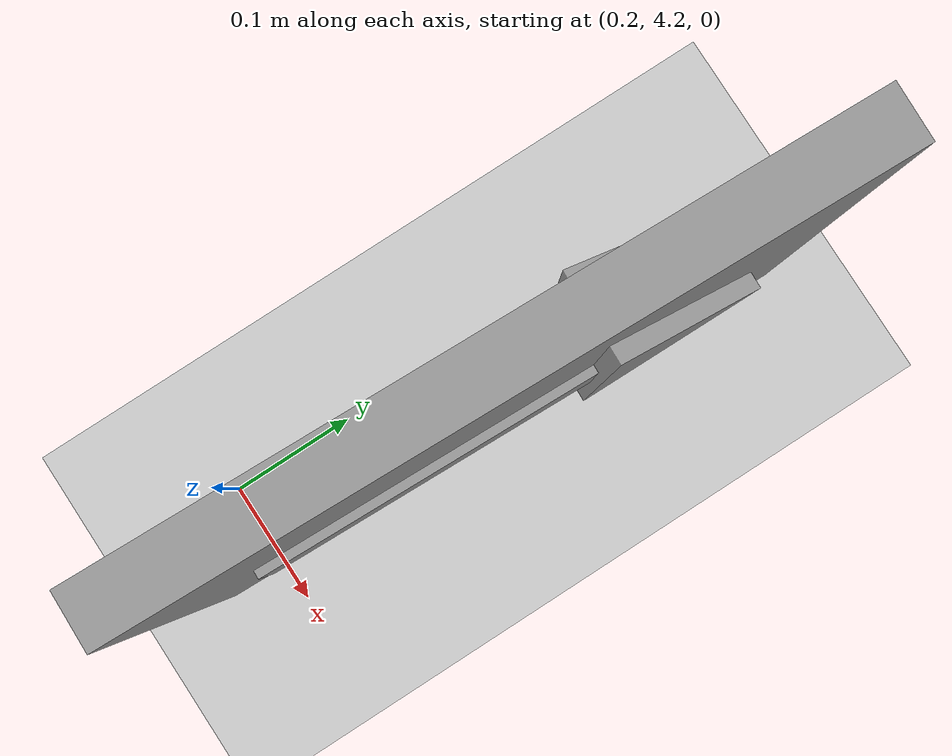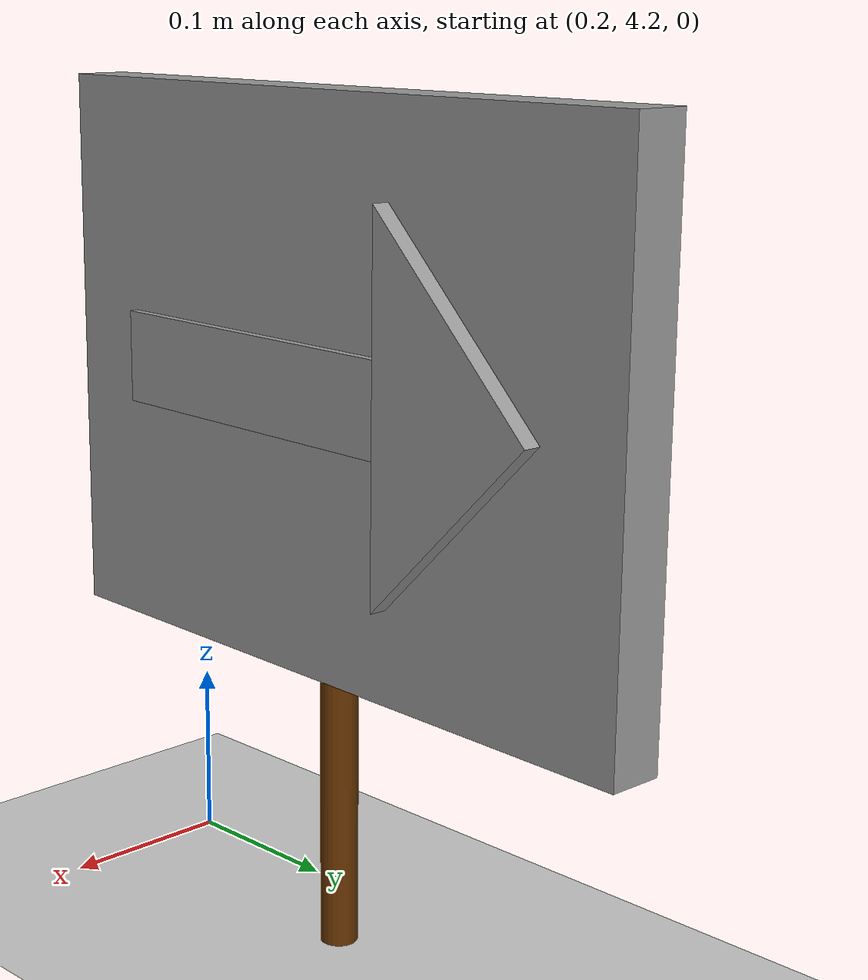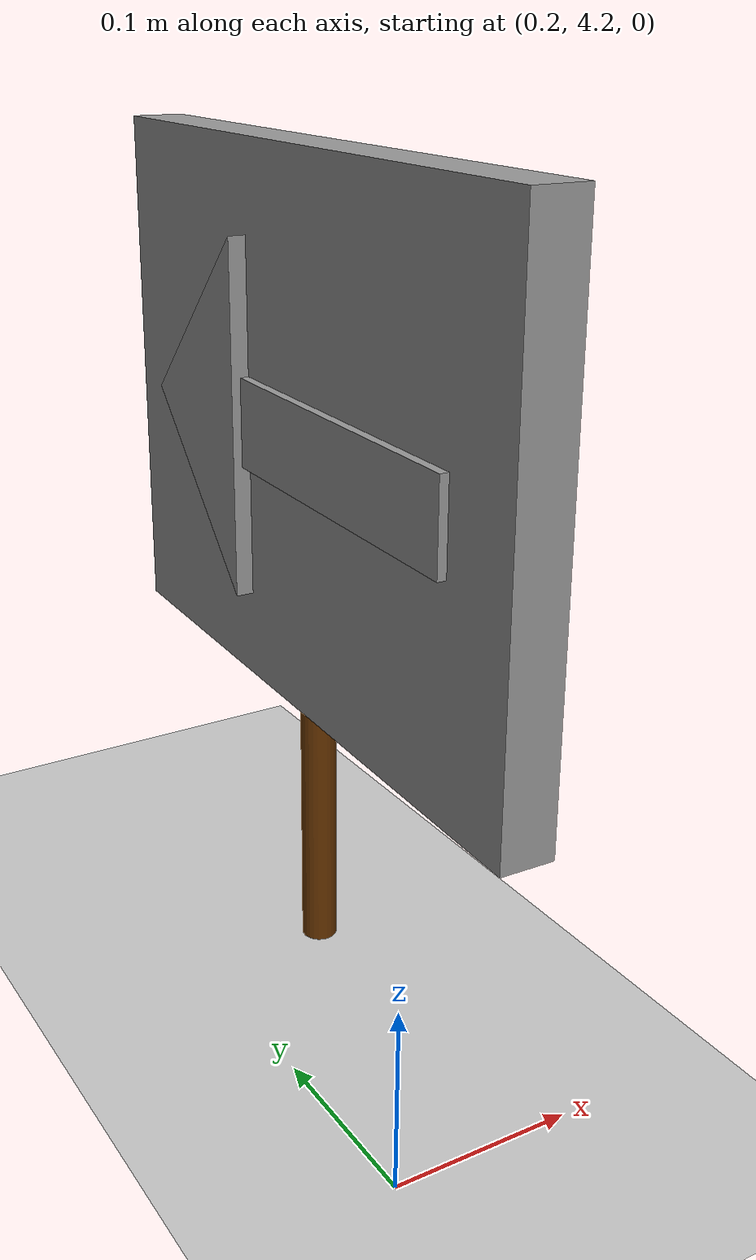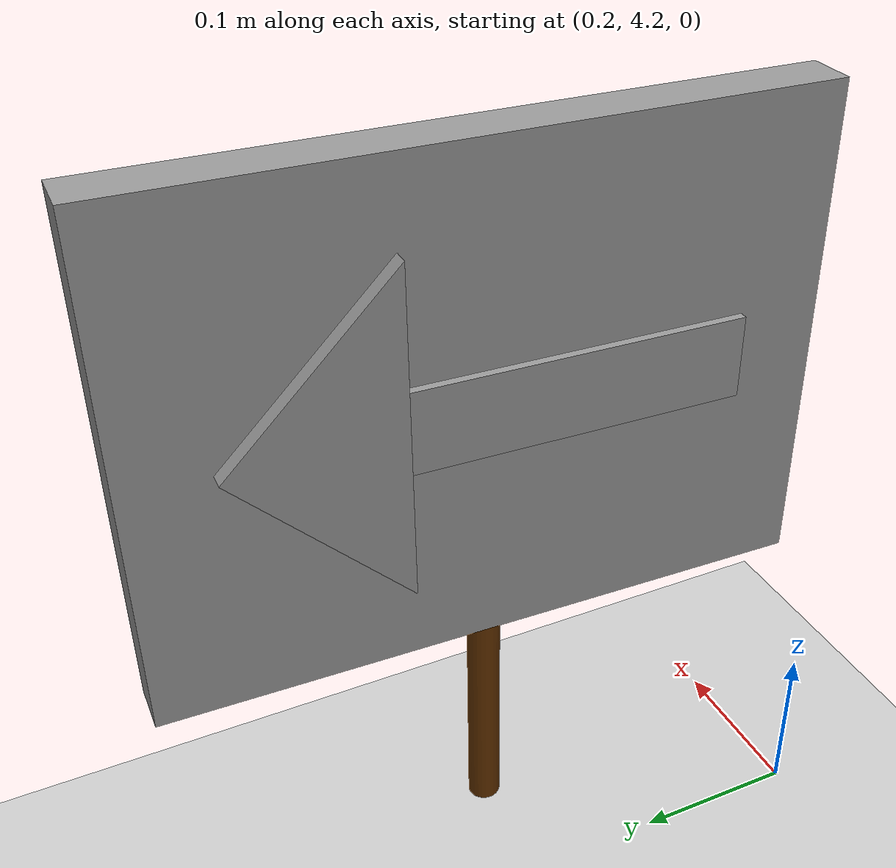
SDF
<sdf version="1.7">
 <world name="default">
  <model name="ground_plane">
   <static>1</static>
   <link name="link">
    <collision name="collision">
     <geometry><plane><normal>0 0 1</normal><size>100 100</size></plane></geometry>
     <surface>
      <contact><collide_bitmask>65535</collide_bitmask></contact>
      <friction><ode><mu>100</mu><mu2>50</mu2></ode></friction>
     </surface>
    </collision>
    <visual name="visual">
     <cast_shadows>0</cast_shadows>
     <geometry><plane><normal>0 0 1</normal><size>100 100</size></plane></geometry>
     <material>
      <script><uri>file://media/materials/scripts/gazebo.material</uri><name>Gazebo/Grey</name></script>
     </material>
    </visual>
   </link>
  </model>
  <model name="arrow_board_3">
   <link name="link_0">
    <inertial>
     <mass>1</mass>
     <inertia><ixx>0.145833</ixx><ixy>0</ixy><ixz>0</ixz><iyy>0.145833</iyy><iyz>0</iyz><izz>0.125</izz></inertia>
    </inertial>
    <pose>-0.01675 0.00625 0.1625 0 -0 0</pose>
    <gravity>0</gravity>
    <visual name="visual">
     <geometry><cylinder><radius>0.01</radius><length>0.3</length></cylinder></geometry>
     <material>
      <lighting>1</lighting>
      <script><uri>file://media/materials/scripts/gazebo.material</uri><name>Gazebo/Grey</name></script>
      <shader type="pixel"><normal_map>__default__</normal_map></shader>
      <ambient>0.4 0.2 0 1</ambient>
      <diffuse>0.4 0.2 0 1</diffuse>
      <specular>0 0 0 1</specular>
      <emissive>0 0 0 1</emissive>
     </material>
    </visual>
    <collision name="collision">
     <geometry><cylinder><radius>0.01</radius><length>0.3</length></cylinder></geometry>
     <surface>
      <friction>
       <ode><mu>1</mu><mu2>1</mu2><fdir1>0 0 0</fdir1><slip1>0</slip1><slip2>0</slip2></ode>
       <torsional>
        <coefficient>1</coefficient>
        <patch_radius>0</patch_radius>
        <surface_radius>0</surface_radius>
        <use_patch_radius>1</use_patch_radius>
        <ode><slip>0</slip></ode>
       </torsional>
      </friction>
      <bounce><restitution_coefficient>0</restitution_coefficient><threshold>1e+06</threshold></bounce>
      <contact>
       <collide_without_contact>0</collide_without_contact>
       <collide_without_contact_bitmask>1</collide_without_contact_bitmask>
       <collide_bitmask>1</collide_bitmask>
       <ode>
        <soft_cfm>0</soft_cfm>
        <soft_erp>0.2</soft_erp>
        <kp>1e+13</kp>
        <kd>1</kd>
        <max_vel>0.01</max_vel>
        <min_depth>0</min_depth>
       </ode>
       <bullet>
        <split_impulse>1</split_impulse>
        <split_impulse_penetration_threshold>-0.01</split_impulse_penetration_threshold>
        <soft_cfm>0</soft_cfm>
        <soft_erp>0.2</soft_erp>
        <kp>1e+13</kp>
        <kd>1</kd>
       </bullet>
      </contact>
     </surface>
    </collision>
   </link>
   <link name="link_1">
    <inertial>
     <mass>1</mass>
     <inertia>
      <ixx>0.166667</ixx>
      <ixy>0</ixy>
      <ixz>0</ixz>
      <iyy>0.166667</iyy>
      <iyz>0</iyz>
      <izz>0.166667</izz>
     </inertia>
    </inertial>
    <pose>-0.01675 0.00625 0.3125 0 -0 0</pose>
    <gravity>0</gravity>
    <visual name="visual">
     <geometry><box><size>0.4 0.03 0.3</size></box></geometry>
     <material>
      <lighting>1</lighting>
      <script><uri>file://media/materials/scripts/gazebo.material</uri><name>Gazebo/Grey</name></script>
      <shader type="pixel"><normal_map>__default__</normal_map></shader>
      <ambient>1 1 1 1</ambient>
      <diffuse>1 1 1 1</diffuse>
      <specular>1 1 1 1</specular>
      <emissive>0 0 0 1</emissive>
     </material>
    </visual>
    <collision name="collision">
     <geometry><box><size>0.4 0.03 0.3</size></box></geometry>
     <surface>
      <friction>
       <ode><mu>1</mu><mu2>1</mu2><fdir1>0 0 0</fdir1><slip1>0</slip1><slip2>0</slip2></ode>
       <torsional>
        <coefficient>1</coefficient>
        <patch_radius>0</patch_radius>
        <surface_radius>0</surface_radius>
        <use_patch_radius>1</use_patch_radius>
        <ode><slip>0</slip></ode>
       </torsional>
      </friction>
      <bounce><restitution_coefficient>0</restitution_coefficient><threshold>1e+06</threshold></bounce>
      <contact>
       <collide_without_contact>0</collide_without_contact>
       <collide_without_contact_bitmask>1</collide_without_contact_bitmask>
       <collide_bitmask>1</collide_bitmask>
       <ode>
        <soft_cfm>0</soft_cfm>
        <soft_erp>0.2</soft_erp>
        <kp>1e+13</kp>
        <kd>1</kd>
        <max_vel>0.01</max_vel>
        <min_depth>0</min_depth>
       </ode>
       <bullet>
        <split_impulse>1</split_impulse>
        <split_impulse_penetration_threshold>-0.01</split_impulse_penetration_threshold>
        <soft_cfm>0</soft_cfm>
        <soft_erp>0.2</soft_erp>
        <kp>1e+13</kp>
        <kd>1</kd>
       </bullet>
      </contact>
     </surface>
    </collision>
   </link>
   <link name="link_2">
    <inertial>
     <mass>1</mass>
     <inertia>
      <ixx>0.166667</ixx>
      <ixy>0</ixy>
      <ixz>0</ixz>
      <iyy>0.166667</iyy>
      <iyz>0</iyz>
      <izz>0.166667</izz>
     </inertia>
    </inertial>
    <pose>-0.06675 0.00625 0.3125 0 -0 0</pose>
    <gravity>0</gravity>
    <visual name="visual">
     <geometry><box><size>0.2 0.04 0.05</size></box></geometry>
     <material>
      <lighting>1</lighting>
      <script><uri>file://media/materials/scripts/gazebo.material</uri><name>Gazebo/Grey</name></script>
      <shader type="pixel"><normal_map>__default__</normal_map></shader>
      <ambient>0 0 0 1</ambient>
      <diffuse>0 0 0 1</diffuse>
      <specular>0 0 0 1</specular>
      <emissive>0 0 0 1</emissive>
     </material>
    </visual>
    <collision name="collision">
     <geometry><box><size>0.2 0.04 0.05</size></box></geometry>
     <surface>
      <friction>
       <ode><mu>1</mu><mu2>1</mu2><fdir1>0 0 0</fdir1><slip1>0</slip1><slip2>0</slip2></ode>
       <torsional>
        <coefficient>1</coefficient>
        <patch_radius>0</patch_radius>
        <surface_radius>0</surface_radius>
        <use_patch_radius>1</use_patch_radius>
        <ode><slip>0</slip></ode>
       </torsional>
      </friction>
      <bounce><restitution_coefficient>0</restitution_coefficient><threshold>1e+06</threshold></bounce>
      <contact>
       <collide_without_contact>0</collide_without_contact>
       <collide_without_contact_bitmask>1</collide_without_contact_bitmask>
       <collide_bitmask>1</collide_bitmask>
       <ode>
        <soft_cfm>0</soft_cfm>
        <soft_erp>0.2</soft_erp>
        <kp>1e+13</kp>
        <kd>1</kd>
        <max_vel>0.01</max_vel>
        <min_depth>0</min_depth>
       </ode>
       <bullet>
        <split_impulse>1</split_impulse>
        <split_impulse_penetration_threshold>-0.01</split_impulse_penetration_threshold>
        <soft_cfm>0</soft_cfm>
        <soft_erp>0.2</soft_erp>
        <kp>1e+13</kp>
        <kd>1</kd>
       </bullet>
      </contact>
     </surface>
    </collision>
   </link>
   <link name="link_4">
    <inertial>
     <mass>1</mass>
     <inertia>
      <ixx>0.166667</ixx>
      <ixy>0</ixy>
      <ixz>0</ixz>
      <iyy>0.166667</iyy>
      <iyz>0</iyz>
      <izz>0.166667</izz>
     </inertia>
    </inertial>
    <pose>0.033583 -0.01875 0.2125 0 -0 0</pose>
    <gravity>0</gravity>
    <visual name="visual">
     <geometry>
      <mesh>
       <uri>/home/ritesh/mobrob_ws/src/mobrob/meshes/arrow_head.stl</uri>
       <scale>0.001 0.001 0.001</scale>
      </mesh>
     </geometry>
     <material>
      <lighting>1</lighting>
      <script><uri>file://media/materials/scripts/gazebo.material</uri><name>Gazebo/Grey</name></script>
      <shader type="pixel"><normal_map>__default__</normal_map></shader>
      <ambient>0 0 0 1</ambient>
      <diffuse>0 0 0 1</diffuse>
      <specular>0 0 0 1</specular>
      <emissive>0 0 0 1</emissive>
     </material>
    </visual>
    <collision name="collision">
     <geometry>
      <mesh>
       <uri>/home/ritesh/mobrob_ws/src/mobrob/meshes/arrow_head.stl</uri>
       <scale>0.001 0.001 0.001</scale>
      </mesh>
     </geometry>
     <surface>
      <friction>
       <ode><mu>1</mu><mu2>1</mu2><fdir1>0 0 0</fdir1><slip1>0</slip1><slip2>0</slip2></ode>
       <torsional>
        <coefficient>1</coefficient>
        <patch_radius>0</patch_radius>
        <surface_radius>0</surface_radius>
        <use_patch_radius>1</use_patch_radius>
        <ode><slip>0</slip></ode>
       </torsional>
      </friction>
      <bounce><restitution_coefficient>0</restitution_coefficient><threshold>1e+06</threshold></bounce>
      <contact>
       <collide_without_contact>0</collide_without_contact>
       <collide_without_contact_bitmask>1</collide_without_contact_bitmask>
       <collide_bitmask>1</collide_bitmask>
       <ode>
        <soft_cfm>0</soft_cfm>
        <soft_erp>0.2</soft_erp>
        <kp>1e+13</kp>
        <kd>1</kd>
        <max_vel>0.01</max_vel>
        <min_depth>0</min_depth>
       </ode>
       <bullet>
        <split_impulse>1</split_impulse>
        <split_impulse_penetration_threshold>-0.01</split_impulse_penetration_threshold>
        <soft_cfm>0</soft_cfm>
        <soft_erp>0.2</soft_erp>
        <kp>1e+13</kp>
        <kd>1</kd>
       </bullet>
      </contact>
     </surface>
    </collision>
   </link>
   <static>0</static>
   <pose>0.272754 4.40497 0 0 -0 1.54091</pose>
  </model>
 </world>
</sdf>
